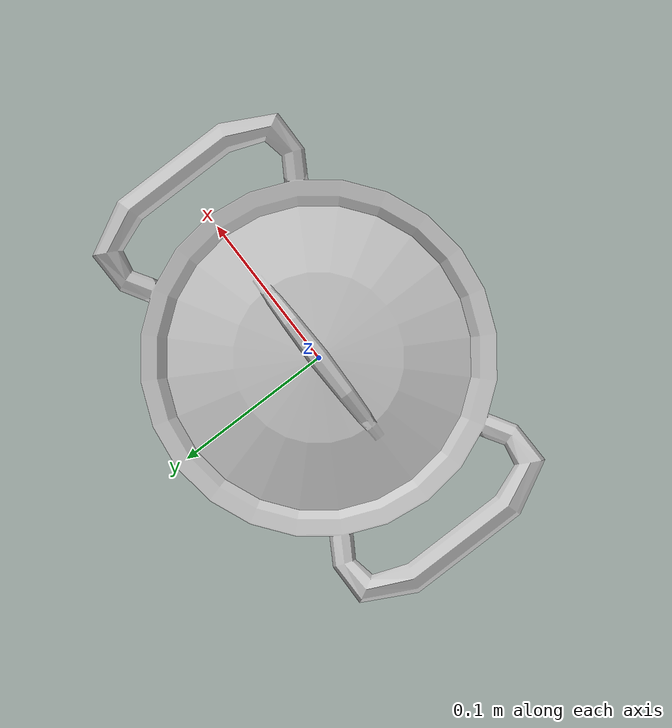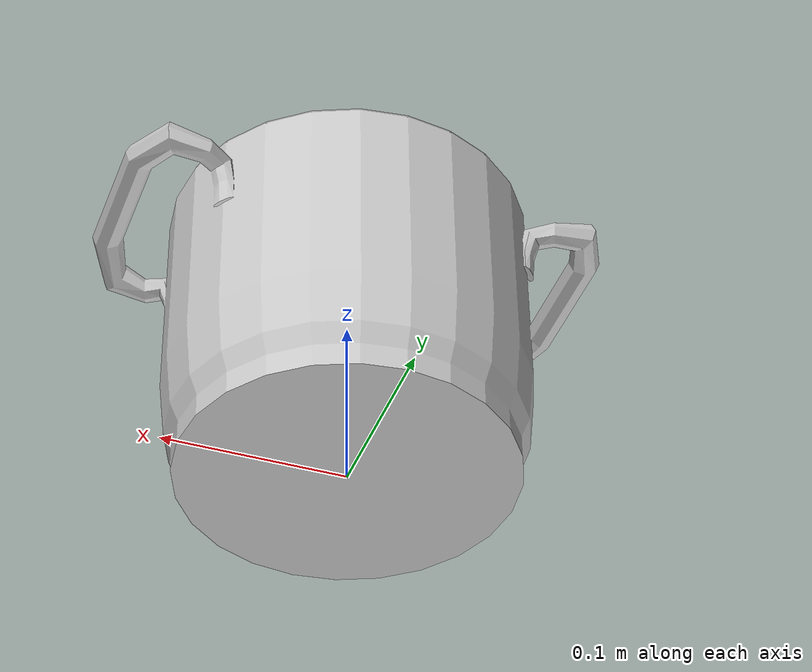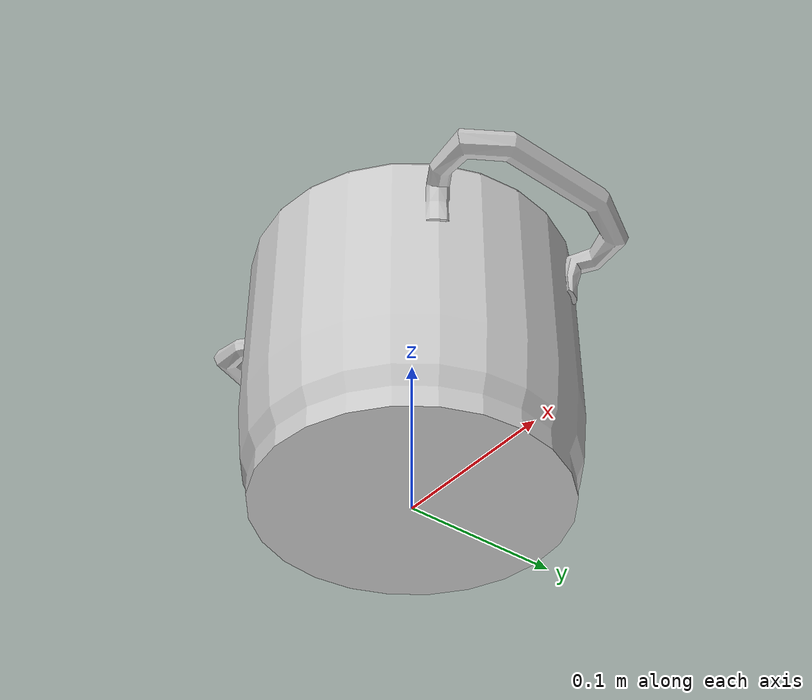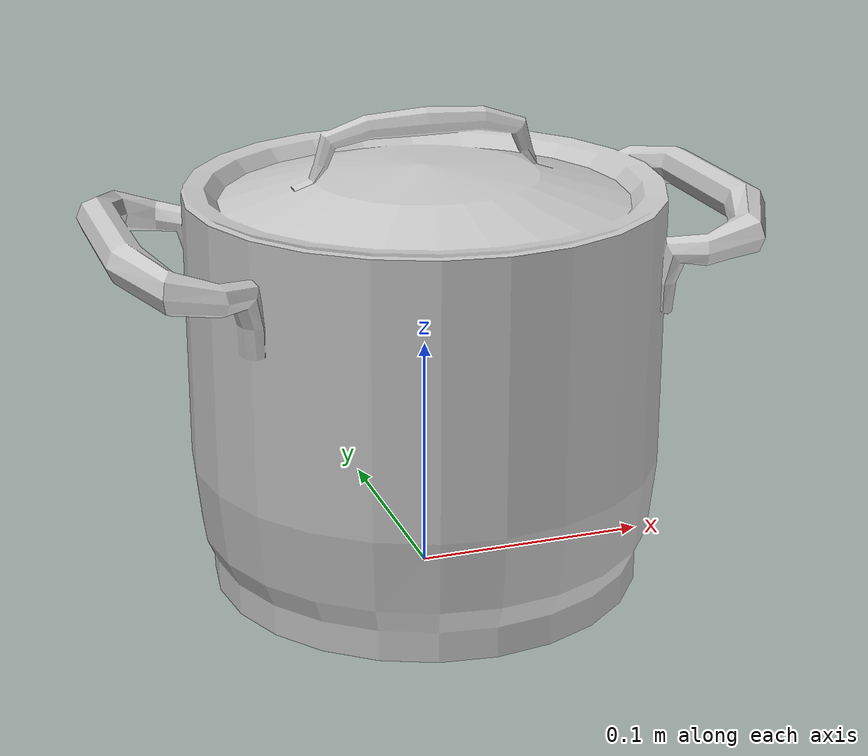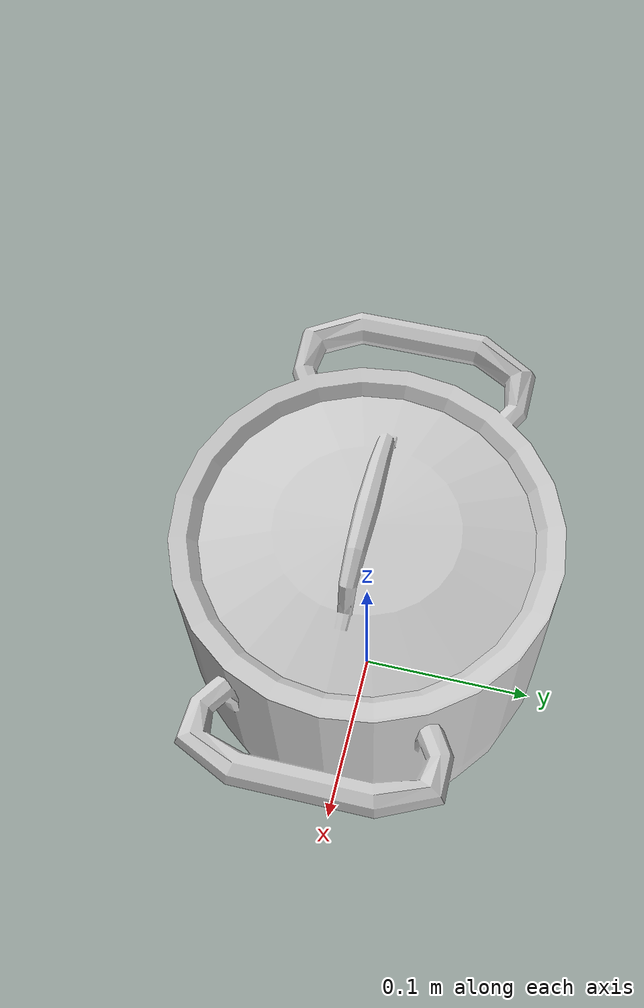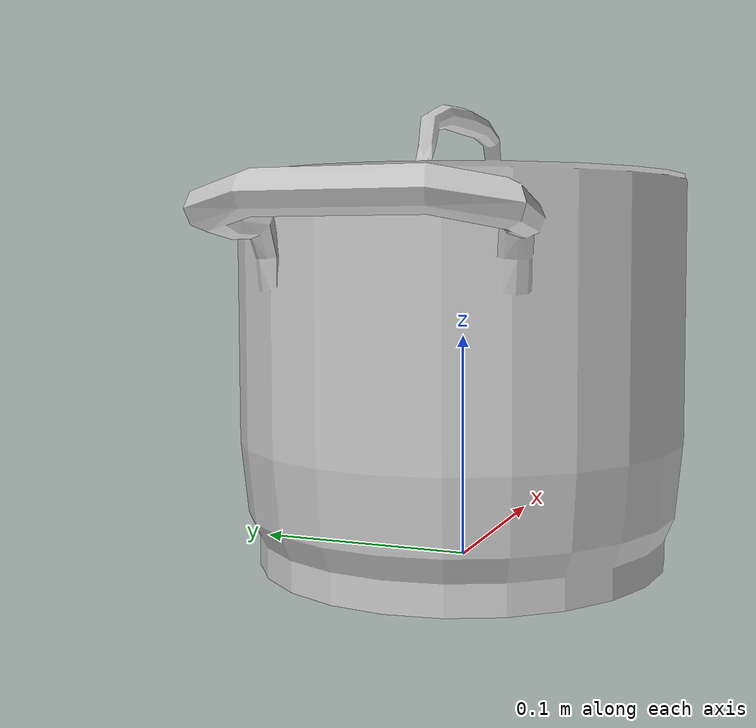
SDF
<?xml version='1.0'?>
<sdf version="1.4">
	<model name="pot_big">
		<static>1</static>
		<link name="link">
			<visual name="mesh">
				<geometry>
					<mesh>
						<uri>model://meshes/pot_big.dae</uri>
					</mesh>
				</geometry>
			</visual>
			<collision name="collider">
				<pose>0 0 0.084 0 0 0</pose>
				<geometry>
					<cylinder>
						<radius>0.099</radius>
						<length>0.168</length>
					</cylinder>
				</geometry>
			</collision>
		</link>
	</model>
</sdf>
